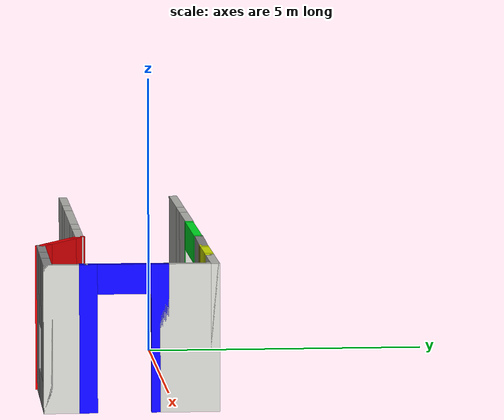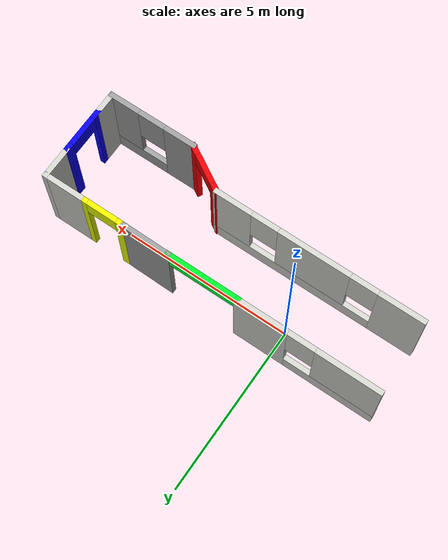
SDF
<?xml version='1.0'?>
<sdf version='1.6'>
  <model name='corridor_with_colored_doors'>
    <pose frame=''>1.97913 -0.758301 0 0 -0 0</pose>
    <link name='Wall_0'>
      <pose frame=''>-1.87913 -0.671699 0 0 -0 0</pose>
      <visual name='Wall_0_Visual_0'>
        <pose frame=''>-2.44393 0 1.25 0 -0 0</pose>
        <geometry>
          <box>
            <size>1.36213 0.15 2.5</size>
          </box>
        </geometry>
        <material>
          <script>
            <uri>file://media/materials/scripts/gazebo.material</uri>
            <name>Gazebo/CeilingTiled</name>
          </script>
          <ambient>1 1 1 1</ambient>
        </material>
      </visual>
      <collision name='Wall_0_Collision_0'>
        <geometry>
          <box>
            <size>1.36213 0.15 2.5</size>
          </box>
        </geometry>
        <pose frame=''>-2.44393 0 1.25 0 -0 0</pose>
      </collision>
      <visual name='Wall_0_Visual_1'>
        <pose frame=''>0.681067 0 0.25 0 -0 0</pose>
        <geometry>
          <box>
            <size>4.88787 0.15 0.5</size>
          </box>
        </geometry>
        <material>
          <script>
            <uri>file://media/materials/scripts/gazebo.material</uri>
            <name>Gazebo/CeilingTiled</name>
          </script>
          <ambient>1 1 1 1</ambient>
        </material>
      </visual>
      <collision name='Wall_0_Collision_1'>
        <geometry>
          <box>
            <size>4.88787 0.15 0.5</size>
          </box>
        </geometry>
        <pose frame=''>0.681067 0 0.25 0 -0 0</pose>
      </collision>
      <visual name='Wall_0_Visual_2'>
        <pose frame=''>0.102536 0 1.5 0 -0 0</pose>
        <geometry>
          <box>
            <size>2.13081 0.15 2</size>
          </box>
        </geometry>
        <material>
          <script>
            <uri>file://media/materials/scripts/gazebo.material</uri>
            <name>Gazebo/CeilingTiled</name>
          </script>
          <ambient>1 1 1 1</ambient>
        </material>
      </visual>
      <collision name='Wall_0_Collision_2'>
        <geometry>
          <box>
            <size>2.13081 0.15 2</size>
          </box>
        </geometry>
        <pose frame=''>0.102536 0 1.5 0 -0 0</pose>
      </collision>
      <visual name='Wall_0_Visual_3'>
        <pose frame=''>2.54647 0 1.5 0 -0 0</pose>
        <geometry>
          <box>
            <size>1.15706 0.15 2</size>
          </box>
        </geometry>
        <material>
          <script>
            <uri>file://media/materials/scripts/gazebo.material</uri>
            <name>Gazebo/CeilingTiled</name>
          </script>
          <ambient>1 1 1 1</ambient>
        </material>
      </visual>
      <collision name='Wall_0_Collision_3'>
        <geometry>
          <box>
            <size>1.15706 0.15 2</size>
          </box>
        </geometry>
        <pose frame=''>2.54647 0 1.5 0 -0 0</pose>
      </collision>
      <visual name='Wall_0_Visual_4'>
        <pose frame=''>-1.36287 0 1.9 0 -0 0</pose>
        <geometry>
          <box>
            <size>0.8 0.15 1.2</size>
          </box>
        </geometry>
        <material>
          <script>
            <uri>file://media/materials/scripts/gazebo.material</uri>
            <name>Gazebo/CeilingTiled</name>
          </script>
          <ambient>1 1 1 1</ambient>
        </material>
      </visual>
      <collision name='Wall_0_Collision_4'>
        <geometry>
          <box>
            <size>0.8 0.15 1.2</size>
          </box>
        </geometry>
        <pose frame=''>-1.36287 0 1.9 0 -0 0</pose>
      </collision>
      <visual name='Wall_0_Visual_5'>
        <pose frame=''>1.56794 0 1.9 0 -0 0</pose>
        <geometry>
          <box>
            <size>0.8 0.15 1.2</size>
          </box>
        </geometry>
        <material>
          <script>
            <uri>file://media/materials/scripts/gazebo.material</uri>
            <name>Gazebo/CeilingTiled</name>
          </script>
          <ambient>1 1 1 1</ambient>
        </material>
      </visual>
      <collision name='Wall_0_Collision_5'>
        <geometry>
          <box>
            <size>0.8 0.15 1.2</size>
          </box>
        </geometry>
        <pose frame=''>1.56794 0 1.9 0 -0 0</pose>
      </collision>
    </link>
    <link name='Wall_1'>
      <pose frame=''>1.78543 -1.0342 0 0 0 -0.53292</pose>
      <visual name='Wall_1_Visual_0'>
        <pose frame=''>-0.623525 0 1.25 0 -0 0</pose>
        <geometry>
          <box>
            <size>0.329974 0.15 2.5</size>
          </box>
        </geometry>
        <material>
          <script>
            <uri>file://media/materials/scripts/gazebo.material</uri>
            <name>Gazebo/Grey</name>
          </script>
          <ambient>1 0 0.0156863 1</ambient>
        </material>
      </visual>
      <collision name='Wall_1_Collision_0'>
        <geometry>
          <box>
            <size>0.329974 0.15 2.5</size>
          </box>
        </geometry>
        <pose frame=''>-0.623525 0 1.25 0 -0 0</pose>
      </collision>
      <visual name='Wall_1_Visual_1'>
        <pose frame=''>0.614987 0 1.25 0 -0 0</pose>
        <geometry>
          <box>
            <size>0.347049 0.15 2.5</size>
          </box>
        </geometry>
        <material>
          <script>
            <uri>file://media/materials/scripts/gazebo.material</uri>
            <name>Gazebo/Grey</name>
          </script>
          <ambient>1 0 0.0156863 1</ambient>
        </material>
      </visual>
      <collision name='Wall_1_Collision_1'>
        <geometry>
          <box>
            <size>0.347049 0.15 2.5</size>
          </box>
        </geometry>
        <pose frame=''>0.614987 0 1.25 0 -0 0</pose>
      </collision>
      <visual name='Wall_1_Visual_2'>
        <pose frame=''>-0.008538 0 2.25 0 -0 0</pose>
        <geometry>
          <box>
            <size>0.9 0.15 0.5</size>
          </box>
        </geometry>
        <material>
          <script>
            <uri>file://media/materials/scripts/gazebo.material</uri>
            <name>Gazebo/Grey</name>
          </script>
          <ambient>1 0 0.0156863 1</ambient>
        </material>
      </visual>
      <collision name='Wall_1_Collision_2'>
        <geometry>
          <box>
            <size>0.9 0.15 0.5</size>
          </box>
        </geometry>
        <pose frame=''>-0.008538 0 2.25 0 -0 0</pose>
      </collision>
    </link>
    <link name='Wall_11'>
      <collision name='Wall_11_Collision'>
        <geometry>
          <box>
            <size>1 0.15 2.5</size>
          </box>
        </geometry>
        <pose frame=''>0 0 1.25 0 -0 0</pose>
      </collision>
      <visual name='Wall_11_Visual'>
        <pose frame=''>0 0 1.25 0 -0 0</pose>
        <geometry>
          <box>
            <size>1 0.15 2.5</size>
          </box>
        </geometry>
        <material>
          <script>
            <uri>file://media/materials/scripts/gazebo.material</uri>
            <name>Gazebo/CeilingTiled</name>
          </script>
          <ambient>1 1 1 1</ambient>
        </material>
      </visual>
      <pose frame=''>5 0.978301 0 0 -0 1.5708</pose>
    </link>
    <link name='Wall_12'>
      <collision name='Wall_12_Collision'>
        <geometry>
          <box>
            <size>1.25 0.15 2.5</size>
          </box>
        </geometry>
        <pose frame=''>0 0 1.25 0 -0 0</pose>
      </collision>
      <visual name='Wall_12_Visual'>
        <pose frame=''>0 0 1.25 0 -0 0</pose>
        <geometry>
          <box>
            <size>1.25 0.15 2.5</size>
          </box>
        </geometry>
        <material>
          <script>
            <uri>file://media/materials/scripts/gazebo.material</uri>
            <name>Gazebo/CeilingTiled</name>
          </script>
          <ambient>1 1 1 1</ambient>
        </material>
      </visual>
      <pose frame=''>4.45 1.4033 0 0 -0 3.14159</pose>
    </link>
    <link name='Wall_13'>
      <pose frame=''>3.225 1.4033 0 0 -0 3.14159</pose>
      <visual name='Wall_13_Visual_0'>
        <pose frame=''>-0.599493 0 1.25 0 -0 0</pose>
        <geometry>
          <box>
            <size>0.301015 0.15 2.5</size>
          </box>
        </geometry>
        <material>
          <script>
            <uri>file://media/materials/scripts/gazebo.material</uri>
            <name>Gazebo/Grey</name>
          </script>
          <ambient>0.917647 1 0 1</ambient>
        </material>
      </visual>
      <collision name='Wall_13_Collision_0'>
        <geometry>
          <box>
            <size>0.301015 0.15 2.5</size>
          </box>
        </geometry>
        <pose frame=''>-0.599493 0 1.25 0 -0 0</pose>
      </collision>
      <visual name='Wall_13_Visual_1'>
        <pose frame=''>0.600507 0 1.25 0 -0 0</pose>
        <geometry>
          <box>
            <size>0.298985 0.15 2.5</size>
          </box>
        </geometry>
        <material>
          <script>
            <uri>file://media/materials/scripts/gazebo.material</uri>
            <name>Gazebo/Grey</name>
          </script>
          <ambient>0.917647 1 0 1</ambient>
        </material>
      </visual>
      <collision name='Wall_13_Collision_1'>
        <geometry>
          <box>
            <size>0.298985 0.15 2.5</size>
          </box>
        </geometry>
        <pose frame=''>0.600507 0 1.25 0 -0 0</pose>
      </collision>
      <visual name='Wall_13_Visual_2'>
        <pose frame=''>0.001015 0 2.25 0 -0 0</pose>
        <geometry>
          <box>
            <size>0.9 0.15 0.5</size>
          </box>
        </geometry>
        <material>
          <script>
            <uri>file://media/materials/scripts/gazebo.material</uri>
            <name>Gazebo/Grey</name>
          </script>
          <ambient>0.917647 1 0 1</ambient>
        </material>
      </visual>
      <collision name='Wall_13_Collision_2'>
        <geometry>
          <box>
            <size>0.9 0.15 0.5</size>
          </box>
        </geometry>
        <pose frame=''>0.001015 0 2.25 0 -0 0</pose>
      </collision>
    </link>
    <link name='Wall_14'>
      <collision name='Wall_14_Collision'>
        <geometry>
          <box>
            <size>1.5 0.15 2.5</size>
          </box>
        </geometry>
        <pose frame=''>0 0 1.25 0 -0 0</pose>
      </collision>
      <visual name='Wall_14_Visual'>
        <pose frame=''>0 0 1.25 0 -0 0</pose>
        <geometry>
          <box>
            <size>1.5 0.15 2.5</size>
          </box>
        </geometry>
        <material>
          <script>
            <uri>file://media/materials/scripts/gazebo.material</uri>
            <name>Gazebo/Grey</name>
          </script>
          <ambient>1 1 1 1</ambient>
        </material>
      </visual>
      <pose frame=''>1.875 1.4133 0 0 -0 3.12678</pose>
    </link>
    <link name='Wall_15'>
      <pose frame=''>0.15 1.4133 0 0 -0 3.14159</pose>
      <visual name='Wall_15_Visual_0'>
        <pose frame=''>-1.07449 0 1.25 0 -0 0</pose>
        <geometry>
          <box>
            <size>0.101014 0.15 2.5</size>
          </box>
        </geometry>
        <material>
          <script>
            <uri>file://media/materials/scripts/gazebo.material</uri>
            <name>Gazebo/Grey</name>
          </script>
          <ambient>0 1 0.164706 1</ambient>
        </material>
      </visual>
      <collision name='Wall_15_Collision_0'>
        <geometry>
          <box>
            <size>0.101014 0.15 2.5</size>
          </box>
        </geometry>
        <pose frame=''>-1.07449 0 1.25 0 -0 0</pose>
      </collision>
      <visual name='Wall_15_Visual_1'>
        <pose frame=''>1.05051 0 1.25 0 -0 0</pose>
        <geometry>
          <box>
            <size>0.148986 0.15 2.5</size>
          </box>
        </geometry>
        <material>
          <script>
            <uri>file://media/materials/scripts/gazebo.material</uri>
            <name>Gazebo/Grey</name>
          </script>
          <ambient>0 1 0.164706 1</ambient>
        </material>
      </visual>
      <collision name='Wall_15_Collision_1'>
        <geometry>
          <box>
            <size>0.148986 0.15 2.5</size>
          </box>
        </geometry>
        <pose frame=''>1.05051 0 1.25 0 -0 0</pose>
      </collision>
      <visual name='Wall_15_Visual_2'>
        <pose frame=''>-0.023986 0 2.25 0 -0 0</pose>
        <geometry>
          <box>
            <size>2 0.15 0.5</size>
          </box>
        </geometry>
        <material>
          <script>
            <uri>file://media/materials/scripts/gazebo.material</uri>
            <name>Gazebo/Grey</name>
          </script>
          <ambient>0 1 0.164706 1</ambient>
        </material>
      </visual>
      <collision name='Wall_15_Collision_2'>
        <geometry>
          <box>
            <size>2 0.15 0.5</size>
          </box>
        </geometry>
        <pose frame=''>-0.023986 0 2.25 0 -0 0</pose>
      </collision>
    </link>
    <link name='Wall_16'>
      <pose frame=''>-2.95 1.4233 0 0 -0 3.14159</pose>
      <visual name='Wall_16_Visual_0'>
        <pose frame=''>-1.34882 0 1.25 0 -0 0</pose>
        <geometry>
          <box>
            <size>1.55235 0.15 2.5</size>
          </box>
        </geometry>
        <material>
          <script>
            <uri>file://media/materials/scripts/gazebo.material</uri>
            <name>Gazebo/CeilingTiled</name>
          </script>
          <ambient>1 1 1 1</ambient>
        </material>
      </visual>
      <collision name='Wall_16_Collision_0'>
        <geometry>
          <box>
            <size>1.55235 0.15 2.5</size>
          </box>
        </geometry>
        <pose frame=''>-1.34882 0 1.25 0 -0 0</pose>
      </collision>
      <visual name='Wall_16_Visual_1'>
        <pose frame=''>0.776178 0 0.25 0 -0 0</pose>
        <geometry>
          <box>
            <size>2.69765 0.15 0.5</size>
          </box>
        </geometry>
        <material>
          <script>
            <uri>file://media/materials/scripts/gazebo.material</uri>
            <name>Gazebo/CeilingTiled</name>
          </script>
          <ambient>1 1 1 1</ambient>
        </material>
      </visual>
      <collision name='Wall_16_Collision_1'>
        <geometry>
          <box>
            <size>2.69765 0.15 0.5</size>
          </box>
        </geometry>
        <pose frame=''>0.776178 0 0.25 0 -0 0</pose>
      </collision>
      <visual name='Wall_16_Visual_2'>
        <pose frame=''>1.17618 0 1.5 0 -0 0</pose>
        <geometry>
          <box>
            <size>1.89765 0.15 2</size>
          </box>
        </geometry>
        <material>
          <script>
            <uri>file://media/materials/scripts/gazebo.material</uri>
            <name>Gazebo/CeilingTiled</name>
          </script>
          <ambient>1 1 1 1</ambient>
        </material>
      </visual>
      <collision name='Wall_16_Collision_2'>
        <geometry>
          <box>
            <size>1.89765 0.15 2</size>
          </box>
        </geometry>
        <pose frame=''>1.17618 0 1.5 0 -0 0</pose>
      </collision>
      <visual name='Wall_16_Visual_3'>
        <pose frame=''>-0.172645 0 1.9 0 -0 0</pose>
        <geometry>
          <box>
            <size>0.8 0.15 1.2</size>
          </box>
        </geometry>
        <material>
          <script>
            <uri>file://media/materials/scripts/gazebo.material</uri>
            <name>Gazebo/CeilingTiled</name>
          </script>
          <ambient>1 1 1 1</ambient>
        </material>
      </visual>
      <collision name='Wall_16_Collision_3'>
        <geometry>
          <box>
            <size>0.8 0.15 1.2</size>
          </box>
        </geometry>
        <pose frame=''>-0.172645 0 1.9 0 -0 0</pose>
      </collision>
    </link>
    <link name='Wall_2'>
      <pose frame=''>3.7 -1.3967 0 0 -0 0</pose>
      <visual name='Wall_2_Visual_0'>
        <pose frame=''>-0.885507 0 1.25 0 -0 0</pose>
        <geometry>
          <box>
            <size>0.978985 0.15 2.5</size>
          </box>
        </geometry>
        <material>
          <script>
            <uri>file://media/materials/scripts/gazebo.material</uri>
            <name>Gazebo/Grey</name>
          </script>
          <ambient>1 1 1 1</ambient>
        </material>
      </visual>
      <collision name='Wall_2_Collision_0'>
        <geometry>
          <box>
            <size>0.978985 0.15 2.5</size>
          </box>
        </geometry>
        <pose frame=''>-0.885507 0 1.25 0 -0 0</pose>
      </collision>
      <visual name='Wall_2_Visual_1'>
        <pose frame=''>0.489493 0 0.25 0 -0 0</pose>
        <geometry>
          <box>
            <size>1.77102 0.15 0.5</size>
          </box>
        </geometry>
        <material>
          <script>
            <uri>file://media/materials/scripts/gazebo.material</uri>
            <name>Gazebo/Grey</name>
          </script>
          <ambient>1 1 1 1</ambient>
        </material>
      </visual>
      <collision name='Wall_2_Collision_1'>
        <geometry>
          <box>
            <size>1.77102 0.15 0.5</size>
          </box>
        </geometry>
        <pose frame=''>0.489493 0 0.25 0 -0 0</pose>
      </collision>
      <visual name='Wall_2_Visual_2'>
        <pose frame=''>0.889493 0 1.5 0 -0 0</pose>
        <geometry>
          <box>
            <size>0.971015 0.15 2</size>
          </box>
        </geometry>
        <material>
          <script>
            <uri>file://media/materials/scripts/gazebo.material</uri>
            <name>Gazebo/Grey</name>
          </script>
          <ambient>1 1 1 1</ambient>
        </material>
      </visual>
      <collision name='Wall_2_Collision_2'>
        <geometry>
          <box>
            <size>0.971015 0.15 2</size>
          </box>
        </geometry>
        <pose frame=''>0.889493 0 1.5 0 -0 0</pose>
      </collision>
      <visual name='Wall_2_Visual_3'>
        <pose frame=''>0.003985 0 1.9 0 -0 0</pose>
        <geometry>
          <box>
            <size>0.8 0.15 1.2</size>
          </box>
        </geometry>
        <material>
          <script>
            <uri>file://media/materials/scripts/gazebo.material</uri>
            <name>Gazebo/Grey</name>
          </script>
          <ambient>1 1 1 1</ambient>
        </material>
      </visual>
      <collision name='Wall_2_Collision_3'>
        <geometry>
          <box>
            <size>0.8 0.15 1.2</size>
          </box>
        </geometry>
        <pose frame=''>0.003985 0 1.9 0 -0 0</pose>
      </collision>
    </link>
    <link name='Wall_5'>
      <collision name='Wall_5_Collision'>
        <geometry>
          <box>
            <size>0.75 0.15 2.5</size>
          </box>
        </geometry>
        <pose frame=''>0 0 1.25 0 -0 0</pose>
      </collision>
      <visual name='Wall_5_Visual'>
        <pose frame=''>0 0 1.25 0 -0 0</pose>
        <geometry>
          <box>
            <size>0.75 0.15 2.5</size>
          </box>
        </geometry>
        <material>
          <script>
            <uri>file://media/materials/scripts/gazebo.material</uri>
            <name>Gazebo/CeilingTiled</name>
          </script>
          <ambient>1 1 1 1</ambient>
        </material>
      </visual>
      <pose frame=''>5 -1.0967 0 0 -0 1.5708</pose>
    </link>
    <link name='Wall_9'>
      <pose frame=''>5 -0.121699 0 0 -0 1.5708</pose>
      <visual name='Wall_9_Visual_0'>
        <pose frame=''>-0.598888 0 1.25 0 -0 0</pose>
        <geometry>
          <box>
            <size>0.302224 0.15 2.5</size>
          </box>
        </geometry>
        <material>
          <script>
            <uri>file://media/materials/scripts/gazebo.material</uri>
            <name>Gazebo/Grey</name>
          </script>
          <ambient>0.0313726 0 1 1</ambient>
        </material>
      </visual>
      <collision name='Wall_9_Collision_0'>
        <geometry>
          <box>
            <size>0.302224 0.15 2.5</size>
          </box>
        </geometry>
        <pose frame=''>-0.598888 0 1.25 0 -0 0</pose>
      </collision>
      <visual name='Wall_9_Visual_1'>
        <pose frame=''>0.601112 0 1.25 0 -0 0</pose>
        <geometry>
          <box>
            <size>0.297776 0.15 2.5</size>
          </box>
        </geometry>
        <material>
          <script>
            <uri>file://media/materials/scripts/gazebo.material</uri>
            <name>Gazebo/Grey</name>
          </script>
          <ambient>0.0313726 0 1 1</ambient>
        </material>
      </visual>
      <collision name='Wall_9_Collision_1'>
        <geometry>
          <box>
            <size>0.297776 0.15 2.5</size>
          </box>
        </geometry>
        <pose frame=''>0.601112 0 1.25 0 -0 0</pose>
      </collision>
      <visual name='Wall_9_Visual_2'>
        <pose frame=''>0.002224 0 2.25 0 -0 0</pose>
        <geometry>
          <box>
            <size>0.9 0.15 0.5</size>
          </box>
        </geometry>
        <material>
          <script>
            <uri>file://media/materials/scripts/gazebo.material</uri>
            <name>Gazebo/Grey</name>
          </script>
          <ambient>0.0313726 0 1 1</ambient>
        </material>
      </visual>
      <collision name='Wall_9_Collision_2'>
        <geometry>
          <box>
            <size>0.9 0.15 0.5</size>
          </box>
        </geometry>
        <pose frame=''>0.002224 0 2.25 0 -0 0</pose>
      </collision>
    </link>
    <static>1</static>
  </model>
</sdf>
